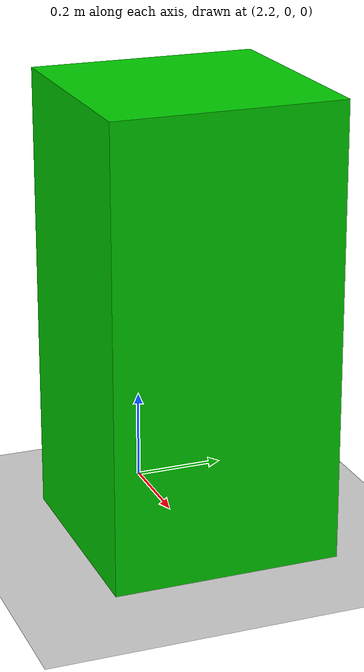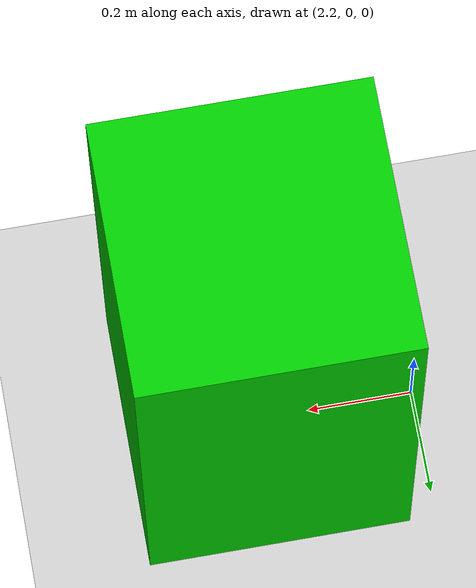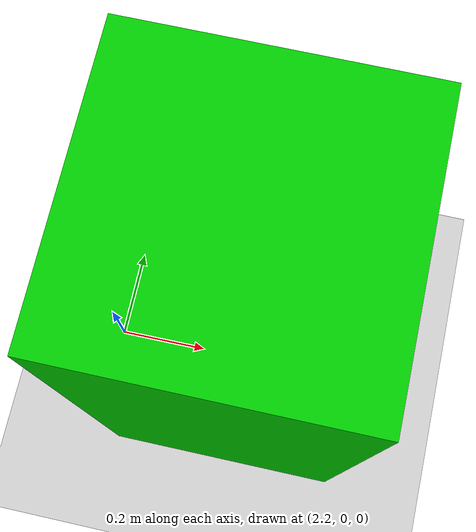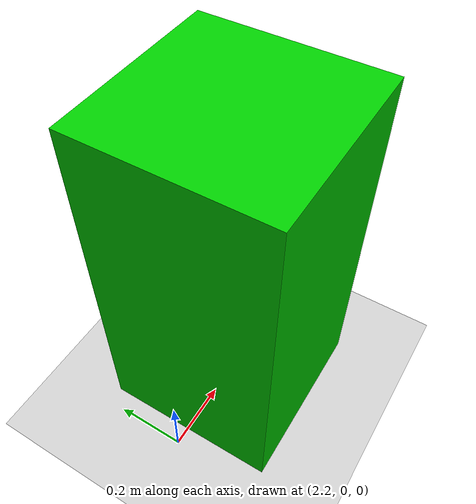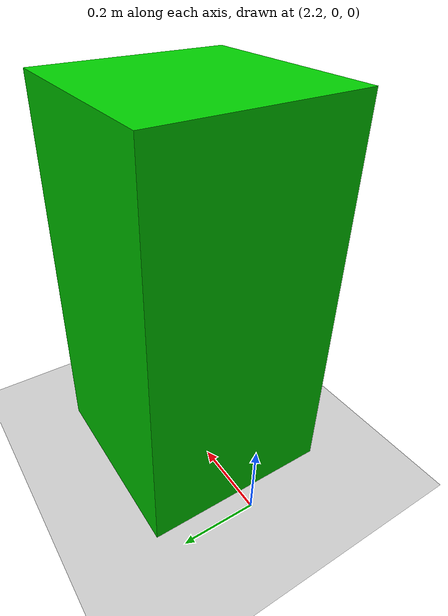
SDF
<?xml version="1.0" ?>
<sdf version="1.9">
  <world name="hmd_world">

    <!-- 🔧 Física: SIN ESTO no hay movimiento -->
    <plugin filename="gz-sim-physics-system" name="gz::sim::systems::Physics"/>

    <!-- 👇 Estos los puedes dejar activados -->
    <plugin filename="gz-sim-scene-broadcaster-system" name="gz::sim::systems::SceneBroadcaster"/>
    <plugin filename="gz-sim-user-commands-system"   name="gz::sim::systems::UserCommands"/>
    <plugin filename="gz-sim-sensors-system"         name="gz::sim::systems::Sensors"/>

    <include>
      <uri>https://fuel.gazebosim.org/1.0/openrobotics/models/Ground Plane</uri>
    </include>

    <light type="directional" name="sun">
      <cast_shadows>true</cast_shadows>
      <direction>-0.5 0.1 -0.9</direction>
    </light>

    <!-- Caja verde estática al frente del origen -->
    <model name="green_box">
      <static>true</static>
      <!-- x=1.5 m delante, z=0.5 m para que asiente en el suelo si la altura es 1.0 -->
      <pose>2.5 0 0.5 0 0 0</pose>

      <link name="box_link">
        <!-- (opcional) pose local del link -->
        <pose>0 0 0 0 0 0</pose>

        <!-- Colisión -->
        <collision name="box_collision">
          <geometry>
            <box>
              <!-- ancho x, fondo y, alto z -->
              <size>0.5 0.5 1.0</size>
            </box>
          </geometry>
        </collision>

        <!-- Visual -->
        <visual name="box_visual">
          <geometry>
            <box>
              <size>0.5 0.5 1.0</size>
            </box>
          </geometry>
          <!-- Material: usa ambient/diffuse/emissive/specular -->
          <material>
            <!-- Verde mate -->
            <ambient>0.0 0.4 0.0 1.0</ambient>
            <diffuse>0.0 0.8 0.0 1.0</diffuse>
            <specular>0.05 0.05 0.05 1.0</specular>
            <emissive>0 0 0 1</emissive>
          </material>
        </visual>
      </link>
    </model>
  </world>
</sdf>
